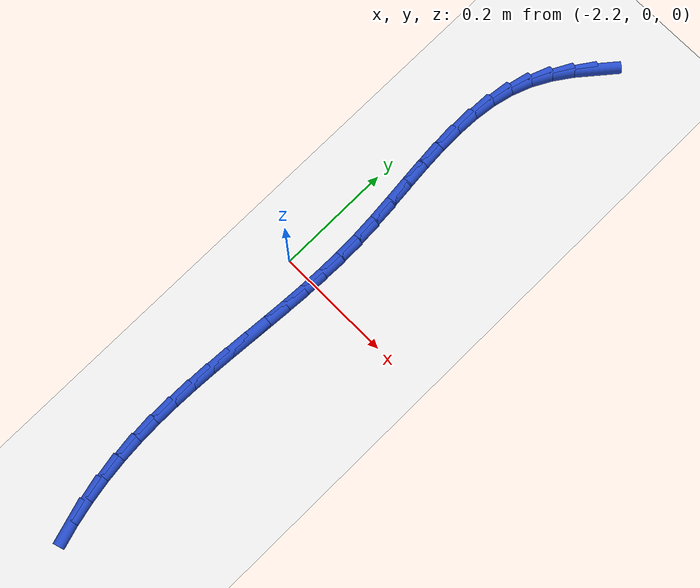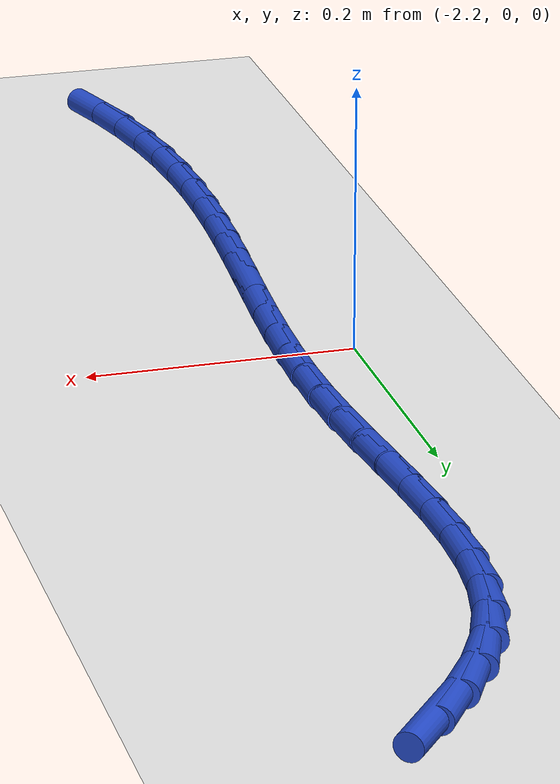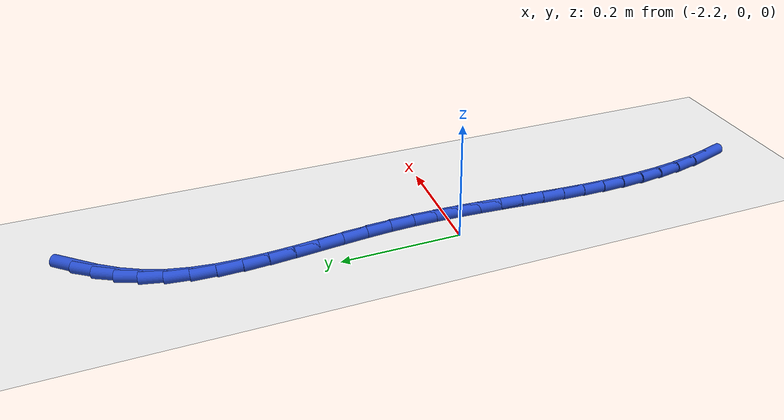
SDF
<sdf version="1.6">
 <world name="default">
  <model name="ground_plane">
   <static>1</static>
   <link name="link">
    <collision name="collision">
     <geometry><plane><normal>0 0 1</normal><size>100 100</size></plane></geometry>
     <surface><friction><ode><mu>100</mu><mu2>50</mu2></ode></friction></surface>
    </collision>
    <visual name="visual">
     <cast_shadows>0</cast_shadows>
     <geometry><plane><normal>0 0 1</normal><size>100 100</size></plane></geometry>
     <material>
      <script><uri>file://media/materials/scripts/gazebo.material</uri><name>Gazebo/WhiteGlow</name></script>
     </material>
    </visual>
   </link>
  </model>
  <model name="line">
   <link name="link_74">
    <pose>-2.0766590942065593 0.5811792700103442 0.01 0 1.57 0.8809882757616035</pose>
    <collision name="collision">
     <geometry><cylinder><radius>0.01</radius><length>0.08</length></cylinder></geometry>
    </collision>
    <visual name="visual">
     <material>
      <script><name>Gazebo/Blue</name><uri>file://media/materials/scripts/gazebo.material</uri></script>
     </material>
     <geometry><cylinder><radius>0.01</radius><length>0.08</length></cylinder></geometry>
    </visual>
   </link>
   <link name="link_75">
    <pose>-2.1008245699161465 0.5518882620354765 0.01 0 1.57 0.9719517949813854</pose>
    <collision name="collision">
     <geometry><cylinder><radius>0.01</radius><length>0.08</length></cylinder></geometry>
    </collision>
    <visual name="visual">
     <material>
      <script><name>Gazebo/Blue</name><uri>file://media/materials/scripts/gazebo.material</uri></script>
     </material>
     <geometry><cylinder><radius>0.01</radius><length>0.08</length></cylinder></geometry>
    </visual>
   </link>
   <link name="link_76">
    <pose>-2.1216943978087754 0.521307154980955 0.01 0 1.57 1.083573533516544</pose>
    <collision name="collision">
     <geometry><cylinder><radius>0.01</radius><length>0.08</length></cylinder></geometry>
    </collision>
    <visual name="visual">
     <material>
      <script><name>Gazebo/Blue</name><uri>file://media/materials/scripts/gazebo.material</uri></script>
     </material>
     <geometry><cylinder><radius>0.01</radius><length>0.08</length></cylinder></geometry>
    </visual>
   </link>
   <link name="link_77">
    <pose>-2.138710378189946 0.4891909929099508 0.01 0 1.57 1.2143171195990663</pose>
    <collision name="collision">
     <geometry><cylinder><radius>0.01</radius><length>0.08</length></cylinder></geometry>
    </collision>
    <visual name="visual">
     <material>
      <script><name>Gazebo/Blue</name><uri>file://media/materials/scripts/gazebo.material</uri></script>
     </material>
     <geometry><cylinder><radius>0.01</radius><length>0.08</length></cylinder></geometry>
    </visual>
   </link>
   <link name="link_78">
    <pose>-2.1513304523669614 0.45530145861363686 0.01 0 1.57 1.344408887449103</pose>
    <collision name="collision">
     <geometry><cylinder><radius>0.01</radius><length>0.08</length></cylinder></geometry>
    </collision>
    <visual name="visual">
     <material>
      <script><name>Gazebo/Blue</name><uri>file://media/materials/scripts/gazebo.material</uri></script>
     </material>
     <geometry><cylinder><radius>0.01</radius><length>0.08</length></cylinder></geometry>
    </visual>
   </link>
   <link name="link_79">
    <pose>-2.159548977006888 0.41962086032590756 0.01 0 1.57 1.4515555627356471</pose>
    <collision name="collision">
     <geometry><cylinder><radius>0.01</radius><length>0.08</length></cylinder></geometry>
    </collision>
    <visual name="visual">
     <material>
      <script><name>Gazebo/Blue</name><uri>file://media/materials/scripts/gazebo.material</uri></script>
     </material>
     <geometry><cylinder><radius>0.01</radius><length>0.08</length></cylinder></geometry>
    </visual>
   </link>
   <link name="link_80">
    <pose>-2.1640085982409865 0.3823981450847992 0.01 0 1.57 1.5349121548277078</pose>
    <collision name="collision">
     <geometry><cylinder><radius>0.01</radius><length>0.08</length></cylinder></geometry>
    </collision>
    <visual name="visual">
     <material>
      <script><name>Gazebo/Blue</name><uri>file://media/materials/scripts/gazebo.material</uri></script>
     </material>
     <geometry><cylinder><radius>0.01</radius><length>0.08</length></cylinder></geometry>
    </visual>
   </link>
   <link name="link_81">
    <pose>-2.165390730008707 0.3438982049692373 0.01 0 1.57 -1.5451404683058088</pose>
    <collision name="collision">
     <geometry><cylinder><radius>0.01</radius><length>0.08</length></cylinder></geometry>
    </collision>
    <visual name="visual">
     <material>
      <script><name>Gazebo/Blue</name><uri>file://media/materials/scripts/gazebo.material</uri></script>
     </material>
     <geometry><cylinder><radius>0.01</radius><length>0.08</length></cylinder></geometry>
    </visual>
   </link>
   <link name="link_82">
    <pose>-2.1643767862494956 0.3043859320581463 0.01 0 1.57 -1.503124734933016</pose>
    <collision name="collision">
     <geometry><cylinder><radius>0.01</radius><length>0.08</length></cylinder></geometry>
    </collision>
    <visual name="visual">
     <material>
      <script><name>Gazebo/Blue</name><uri>file://media/materials/scripts/gazebo.material</uri></script>
     </material>
     <geometry><cylinder><radius>0.01</radius><length>0.08</length></cylinder></geometry>
    </visual>
   </link>
   <link name="link_83">
    <pose>-2.1616481809028 0.26412621843045014 0.01 0 1.57 -1.4787244402609299</pose>
    <collision name="collision">
     <geometry><cylinder><radius>0.01</radius><length>0.08</length></cylinder></geometry>
    </collision>
    <visual name="visual">
     <material>
      <script><name>Gazebo/Blue</name><uri>file://media/materials/scripts/gazebo.material</uri></script>
     </material>
     <geometry><cylinder><radius>0.01</radius><length>0.08</length></cylinder></geometry>
    </visual>
   </link>
   <link name="link_84">
    <pose>-2.1578863279080673 0.2233839561650745 0.01 0 1.57 -1.4706999665648395</pose>
    <collision name="collision">
     <geometry><cylinder><radius>0.01</radius><length>0.08</length></cylinder></geometry>
    </collision>
    <visual name="visual">
     <material>
      <script><name>Gazebo/Blue</name><uri>file://media/materials/scripts/gazebo.material</uri></script>
     </material>
     <geometry><cylinder><radius>0.01</radius><length>0.08</length></cylinder></geometry>
    </visual>
   </link>
   <link name="link_85">
    <pose>-2.1537726412047458 0.18242403734094312 0.01 0 1.57 -1.4785664743655114</pose>
    <collision name="collision">
     <geometry><cylinder><radius>0.01</radius><length>0.08</length></cylinder></geometry>
    </collision>
    <visual name="visual">
     <material>
      <script><name>Gazebo/Blue</name><uri>file://media/materials/scripts/gazebo.material</uri></script>
     </material>
     <geometry><cylinder><radius>0.01</radius><length>0.08</length></cylinder></geometry>
    </visual>
   </link>
   <link name="link_86">
    <pose>-2.1499885347322825 0.14151135403698148 0.01 0 1.57 -1.5025998655886317</pose>
    <collision name="collision">
     <geometry><cylinder><radius>0.01</radius><length>0.08</length></cylinder></geometry>
    </collision>
    <visual name="visual">
     <material>
      <script><name>Gazebo/Blue</name><uri>file://media/materials/scripts/gazebo.material</uri></script>
     </material>
     <geometry><cylinder><radius>0.01</radius><length>0.08</length></cylinder></geometry>
    </visual>
   </link>
   <link name="link_87">
    <pose>-2.1472154200913676 0.10091079748765175 0.01 0 1.57 -1.539540777078199</pose>
    <collision name="collision">
     <geometry><cylinder><radius>0.01</radius><length>0.08</length></cylinder></geometry>
    </collision>
    <visual name="visual">
     <material>
      <script><name>Gazebo/Blue</name><uri>file://media/materials/scripts/gazebo.material</uri></script>
     </material>
     <geometry><cylinder><radius>0.01</radius><length>0.08</length></cylinder></geometry>
    </visual>
   </link>
   <link name="link_88">
    <pose>-2.1459621063284593 0.06082493679981358 0.01 0 1.57 1.5674218975876821</pose>
    <collision name="collision">
     <geometry><cylinder><radius>0.01</radius><length>0.08</length></cylinder></geometry>
    </collision>
    <visual name="visual">
     <material>
      <script><name>Gazebo/Blue</name><uri>file://media/materials/scripts/gazebo.material</uri></script>
     </material>
     <geometry><cylinder><radius>0.01</radius><length>0.08</length></cylinder></geometry>
    </visual>
   </link>
   <link name="link_89">
    <pose>-2.146095735192211 0.02122465232352096 0.01 0 1.57 1.539207165371597</pose>
    <collision name="collision">
     <geometry><cylinder><radius>0.01</radius><length>0.08</length></cylinder></geometry>
    </collision>
    <visual name="visual">
     <material>
      <script><name>Gazebo/Blue</name><uri>file://media/materials/scripts/gazebo.material</uri></script>
     </material>
     <geometry><cylinder><radius>0.01</radius><length>0.08</length></cylinder></geometry>
    </visual>
   </link>
   <link name="link_90">
    <pose>-2.1473343683255757 -0.01797300439696348 0.01 0 1.57 1.5178159555510624</pose>
    <collision name="collision">
     <geometry><cylinder><radius>0.01</radius><length>0.08</length></cylinder></geometry>
    </collision>
    <visual name="visual">
     <material>
      <script><name>Gazebo/Blue</name><uri>file://media/materials/scripts/gazebo.material</uri></script>
     </material>
     <geometry><cylinder><radius>0.01</radius><length>0.08</length></cylinder></geometry>
    </visual>
   </link>
   <link name="link_91">
    <pose>-2.149396067371501 -0.05685098181737659 0.01 0 1.57 1.5035391600113999</pose>
    <collision name="collision">
     <geometry><cylinder><radius>0.01</radius><length>0.08</length></cylinder></geometry>
    </collision>
    <visual name="visual">
     <material>
      <script><name>Gazebo/Blue</name><uri>file://media/materials/scripts/gazebo.material</uri></script>
     </material>
     <geometry><cylinder><radius>0.01</radius><length>0.08</length></cylinder></geometry>
    </visual>
   </link>
   <link name="link_92">
    <pose>-2.15199889397294 -0.0954922283934561 0.01 0 1.57 1.4965706565866448</pose>
    <collision name="collision">
     <geometry><cylinder><radius>0.01</radius><length>0.08</length></cylinder></geometry>
    </collision>
    <visual name="visual">
     <material>
      <script><name>Gazebo/Blue</name><uri>file://media/materials/scripts/gazebo.material</uri></script>
     </material>
     <geometry><cylinder><radius>0.01</radius><length>0.08</length></cylinder></geometry>
    </visual>
   </link>
   <link name="link_93">
    <pose>-2.1548609097728417 -0.13397969258093734 0.01 0 1.57 1.4970232270221757</pose>
    <collision name="collision">
     <geometry><cylinder><radius>0.01</radius><length>0.08</length></cylinder></geometry>
    </collision>
    <visual name="visual">
     <material>
      <script><name>Gazebo/Blue</name><uri>file://media/materials/scripts/gazebo.material</uri></script>
     </material>
     <geometry><cylinder><radius>0.01</radius><length>0.08</length></cylinder></geometry>
    </visual>
   </link>
   <link name="link_94">
    <pose>-2.157700176414158 -0.17239632283555806 0.01 0 1.57 1.5049364222263768</pose>
    <collision name="collision">
     <geometry><cylinder><radius>0.01</radius><length>0.08</length></cylinder></geometry>
    </collision>
    <visual name="visual">
     <material>
      <script><name>Gazebo/Blue</name><uri>file://media/materials/scripts/gazebo.material</uri></script>
     </material>
     <geometry><cylinder><radius>0.01</radius><length>0.08</length></cylinder></geometry>
    </visual>
   </link>
   <link name="link_95">
    <pose>-2.1602347555398396 -0.2108250676130551 0.01 0 1.57 1.5202744358984481</pose>
    <collision name="collision">
     <geometry><cylinder><radius>0.01</radius><length>0.08</length></cylinder></geometry>
    </collision>
    <visual name="visual">
     <material>
      <script><name>Gazebo/Blue</name><uri>file://media/materials/scripts/gazebo.material</uri></script>
     </material>
     <geometry><cylinder><radius>0.01</radius><length>0.08</length></cylinder></geometry>
    </visual>
   </link>
   <link name="link_96">
    <pose>-2.1621827087928356 -0.24934887536916542 0.01 0 1.57 1.5429136765608047</pose>
    <collision name="collision">
     <geometry><cylinder><radius>0.01</radius><length>0.08</length></cylinder></geometry>
    </collision>
    <visual name="visual">
     <material>
      <script><name>Gazebo/Blue</name><uri>file://media/materials/scripts/gazebo.material</uri></script>
     </material>
     <geometry><cylinder><radius>0.01</radius><length>0.08</length></cylinder></geometry>
    </visual>
   </link>
   <link name="link_97">
    <pose>-2.1632620978160984 -0.2880506945596258 0.01 0 1.57 -1.5689711622087459</pose>
    <collision name="collision">
     <geometry><cylinder><radius>0.01</radius><length>0.08</length></cylinder></geometry>
    </collision>
    <visual name="visual">
     <material>
      <script><name>Gazebo/Blue</name><uri>file://media/materials/scripts/gazebo.material</uri></script>
     </material>
     <geometry><cylinder><radius>0.01</radius><length>0.08</length></cylinder></geometry>
    </visual>
   </link>
   <link name="link_98">
    <pose>-2.1631909842525774 -0.3270134736401741 0.01 0 1.57 -1.5325630918862763</pose>
    <collision name="collision">
     <geometry><cylinder><radius>0.01</radius><length>0.08</length></cylinder></geometry>
    </collision>
    <visual name="visual">
     <material>
      <script><name>Gazebo/Blue</name><uri>file://media/materials/scripts/gazebo.material</uri></script>
     </material>
     <geometry><cylinder><radius>0.01</radius><length>0.08</length></cylinder></geometry>
    </visual>
   </link>
   <link name="link_99">
    <pose>-2.1616874297452244 -0.3663201610665455 0.01 0 1.57 -1.4899848632982995</pose>
    <collision name="collision">
     <geometry><cylinder><radius>0.01</radius><length>0.08</length></cylinder></geometry>
    </collision>
    <visual name="visual">
     <material>
      <script><name>Gazebo/Blue</name><uri>file://media/materials/scripts/gazebo.material</uri></script>
     </material>
     <geometry><cylinder><radius>0.01</radius><length>0.08</length></cylinder></geometry>
    </visual>
   </link>
   <link name="link_100">
    <pose>-2.1584694959369894 -0.406053705294478 0.01 0 1.57 -1.4419461383666201</pose>
    <collision name="collision">
     <geometry><cylinder><radius>0.01</radius><length>0.08</length></cylinder></geometry>
    </collision>
    <visual name="visual">
     <material>
      <script><name>Gazebo/Blue</name><uri>file://media/materials/scripts/gazebo.material</uri></script>
     </material>
     <geometry><cylinder><radius>0.01</radius><length>0.08</length></cylinder></geometry>
    </visual>
   </link>
   <link name="link_101">
    <pose>-2.1532552444708233 -0.44629705477970816 0.01 0 1.57 -1.389393750718795</pose>
    <collision name="collision">
     <geometry><cylinder><radius>0.01</radius><length>0.08</length></cylinder></geometry>
    </collision>
    <visual name="visual">
     <material>
      <script><name>Gazebo/Blue</name><uri>file://media/materials/scripts/gazebo.material</uri></script>
     </material>
     <geometry><cylinder><radius>0.01</radius><length>0.08</length></cylinder></geometry>
    </visual>
   </link>
   <link name="link_102">
    <pose>-2.145766949547054 -0.48712324081192976 0.01 0 1.57 -1.334547727134658</pose>
    <collision name="collision">
     <geometry><cylinder><radius>0.01</radius><length>0.08</length></cylinder></geometry>
    </collision>
    <visual name="visual">
     <material>
      <script><name>Gazebo/Blue</name><uri>file://media/materials/scripts/gazebo.material</uri></script>
     </material>
     <geometry><cylinder><radius>0.01</radius><length>0.08</length></cylinder></geometry>
    </visual>
   </link>
   <link name="link_103">
    <pose>-2.13585036665712 -0.5283145960962206 0.01 0 1.57 -1.2780820523788583</pose>
    <collision name="collision">
     <geometry><cylinder><radius>0.01</radius><length>0.08</length></cylinder></geometry>
    </collision>
    <visual name="visual">
     <material>
      <script><name>Gazebo/Blue</name><uri>file://media/materials/scripts/gazebo.material</uri></script>
     </material>
     <geometry><cylinder><radius>0.01</radius><length>0.08</length></cylinder></geometry>
    </visual>
   </link>
  </model>
 </world>
</sdf>
